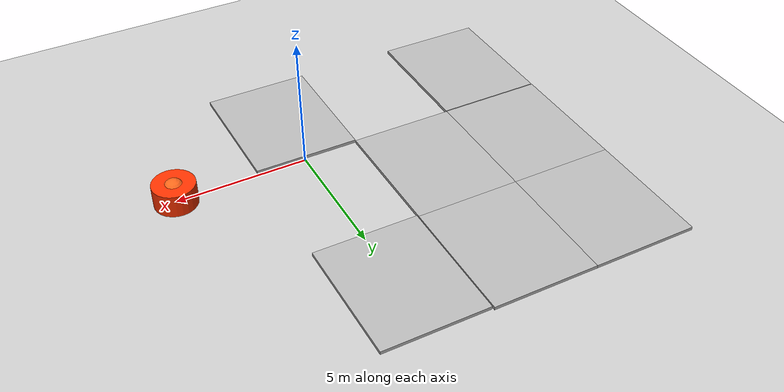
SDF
<sdf version="1.9">
 <world name="default">
  <physics name="1ms" type="ignore">
   <max_step_size>0.001</max_step_size>
   <real_time_factor>1.0</real_time_factor>
  </physics>
  <plugin filename="gz-sim-physics-system" name="gz::sim::systems::Physics"/>
  <plugin filename="gz-sim-sensors-system" name="gz::sim::systems::Sensors">
   <render_engine>ogre2</render_engine>
  </plugin>
  <plugin filename="gz-sim-user-commands-system" name="gz::sim::systems::UserCommands"/>
  <plugin filename="gz-sim-scene-broadcaster-system" name="gz::sim::systems::SceneBroadcaster"/>
  <plugin filename="gz-sim-air-pressure-system" name="gz::sim::systems::AirPressure"/>
  <plugin filename="gz-sim-air-speed-system" name="gz::sim::systems::AirSpeed"/>
  <plugin filename="gz-sim-altimeter-system" name="gz::sim::systems::Altimeter"/>
  <plugin filename="gz-sim-imu-system" name="gz::sim::systems::Imu"/>
  <plugin filename="gz-sim-magnetometer-system" name="gz::sim::systems::Magnetometer"/>
  <plugin filename="gz-sim-navsat-system" name="gz::sim::systems::NavSat"/>
  <scene><ambient>0.4 0.4 0.4 1</ambient><background>0.7 0.7 0.7 1</background><shadows>1</shadows></scene>
  <light name="sun" type="directional">
   <pose>0 0 10 0 -0 0</pose>
   <diffuse>0.8 0.8 0.8 1</diffuse>
   <specular>0.1 0.1 0.1 1</specular>
   <attenuation>
    <range>1000</range>
    <constant>0.9</constant>
    <linear>0.01</linear>
    <quadratic>0.001</quadratic>
   </attenuation>
   <direction>-0.5 0.5 -1</direction>
  </light>
  <model name="ground_plane">
   <static>1</static>
   <link name="link">
    <collision name="collision">
     <geometry><plane><normal>0 0 1</normal><size>100 100</size></plane></geometry>
     <surface><friction><ode><mu>100</mu><mu2>50</mu2></ode></friction></surface>
    </collision>
    <visual name="visual">
     <cast_shadows>0</cast_shadows>
     <geometry><plane><normal>0 0 1</normal><size>100 100</size></plane></geometry>
     <material>
      <script><uri>file://media/materials/scripts/gazebo.material</uri><name>Gazebo/Grey</name></script>
     </material>
    </visual>
   </link>
  </model>
  <model name="mud_box">
   <static>1</static>
   <link name="link">
    <collision name="collision"><geometry><box><size>8 10 0.2</size></box></geometry></collision>
    <visual name="visual_1">
     <pose>-2 2.5 0 0 0 0</pose>
     <geometry><box><size>4 5 0.2</size></box></geometry>
     <material>
      <script>
       <uri>model://mud_box/materials/scripts</uri>
       <uri>model://mud_box/materials/textures</uri>
       <name>vrc/mud</name>
      </script>
     </material>
    </visual>
    <visual name="visual_2">
     <pose>2 2.5 0 0 0 0</pose>
     <geometry><box><size>4 5 0.2</size></box></geometry>
     <material>
      <script>
       <uri>model://mud_box/materials/scripts</uri>
       <uri>model://mud_box/materials/textures</uri>
       <name>vrc/mud</name>
      </script>
     </material>
    </visual>
    <visual name="visual_3">
     <pose>2 -2.5 0 0 0 0</pose>
     <geometry><box><size>4 5 0.2</size></box></geometry>
     <material>
      <script>
       <uri>model://mud_box/materials/scripts</uri>
       <uri>model://mud_box/materials/textures</uri>
       <name>vrc/mud</name>
      </script>
     </material>
    </visual>
    <visual name="visual_4">
     <pose>-2 -2.5 0 0 0 0</pose>
     <geometry><box><size>4 5 0.2</size></box></geometry>
     <material>
      <script>
       <uri>model://mud_box/materials/scripts</uri>
       <uri>model://mud_box/materials/textures</uri>
       <name>vrc/mud</name>
      </script>
     </material>
    </visual>
   </link>
   <pose>-6.13192 4.89997 0 0 -0 0</pose>
  </model>
  <model name="mud_box_0">
   <static>1</static>
   <link name="link">
    <collision name="collision"><geometry><box><size>8 10 0.2</size></box></geometry></collision>
    <visual name="visual_1">
     <pose>-2 2.5 0 0 0 0</pose>
     <geometry><box><size>4 5 0.2</size></box></geometry>
     <material>
      <script>
       <uri>model://mud_box/materials/scripts</uri>
       <uri>model://mud_box/materials/textures</uri>
       <name>vrc/mud</name>
      </script>
     </material>
    </visual>
   </link>
   <pose>1.90734 4.83104 0 0 -0 0</pose>
  </model>
  <model name="mud_box_1">
   <static>1</static>
   <link name="link">
    <collision name="collision"><geometry><box><size>8 10 0.2</size></box></geometry></collision>
    <visual name="visual_1">
     <pose>-2 2.5 0 0 0 0</pose>
     <geometry><box><size>4 5 0.2</size></box></geometry>
     <material>
      <script>
       <uri>model://mud_box/materials/scripts</uri>
       <uri>model://mud_box/materials/textures</uri>
       <name>vrc/mud</name>
      </script>
     </material>
    </visual>
   </link>
   <pose>-6.12792 -5.13998 0 0 -0 0</pose>
  </model>
  <model name="mud_box_2">
   <static>1</static>
   <link name="link">
    <collision name="collision"><geometry><box><size>8 10 0.2</size></box></geometry></collision>
    <visual name="visual_1">
     <pose>-2 2.5 0 0 0 0</pose>
     <geometry><box><size>4 5 0.2</size></box></geometry>
     <material>
      <script>
       <uri>model://mud_box/materials/scripts</uri>
       <uri>model://mud_box/materials/textures</uri>
       <name>vrc/mud</name>
      </script>
     </material>
    </visual>
   </link>
   <pose>1.85975 -5.14192 0 0 -0 0</pose>
  </model>
  <model name="realistic_fire">
   <pose>5 0 0.1 0 0 0</pose>
   <static>true</static>
   <link name="fire_core">
    <visual name="core">
     <geometry><cylinder><radius>0.8</radius><length>1.5</length></cylinder></geometry>
     <material>
      <ambient>1.0 0.2 0.0 1</ambient>
      <diffuse>1.0 0.2 0.0 1</diffuse>
      <emissive>1.0 0.5 0.0 1</emissive>
     </material>
    </visual>
   </link>
   <link name="fire_flicker">
    <pose>0 0 0.5 0 0 0</pose>
    <visual name="flicker">
     <geometry><sphere><radius>0.4</radius></sphere></geometry>
     <material>
      <ambient>1.0 0.4 0.1 1</ambient>
      <diffuse>1.0 0.4 0.1 1</diffuse>
      <emissive>1.0 0.5 0.0 1</emissive>
     </material>
    </visual>
   </link>
  </model>
  <light name="fire_light" type="point">
   <pose>5 0 2 0 0 0</pose>
   <diffuse>1.0 0.6 0.1 1</diffuse>
   <specular>0.3 0.3 0.3 1</specular>
   <attenuation>
    <range>25</range>
    <constant>0.3</constant>
    <linear>0.01</linear>
    <quadratic>0.02</quadratic>
   </attenuation>
  </light>
 </world>
</sdf>
